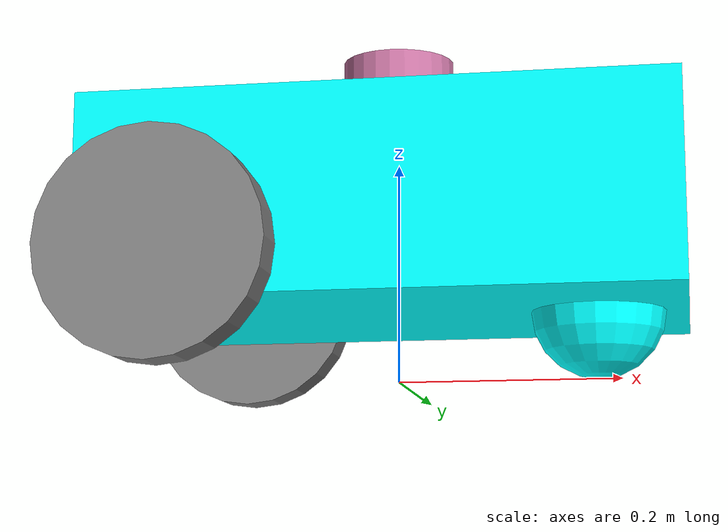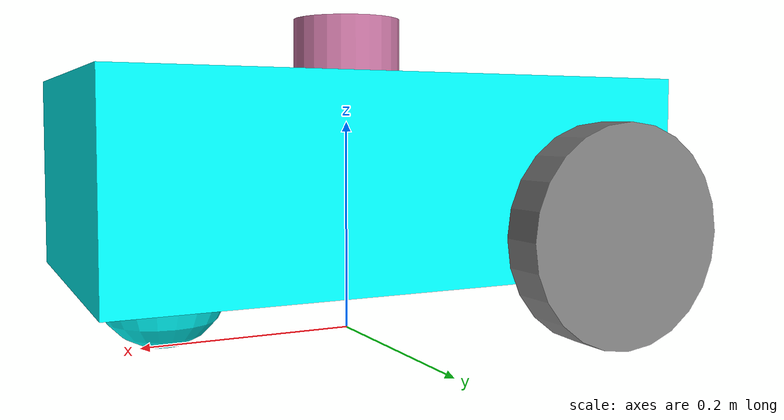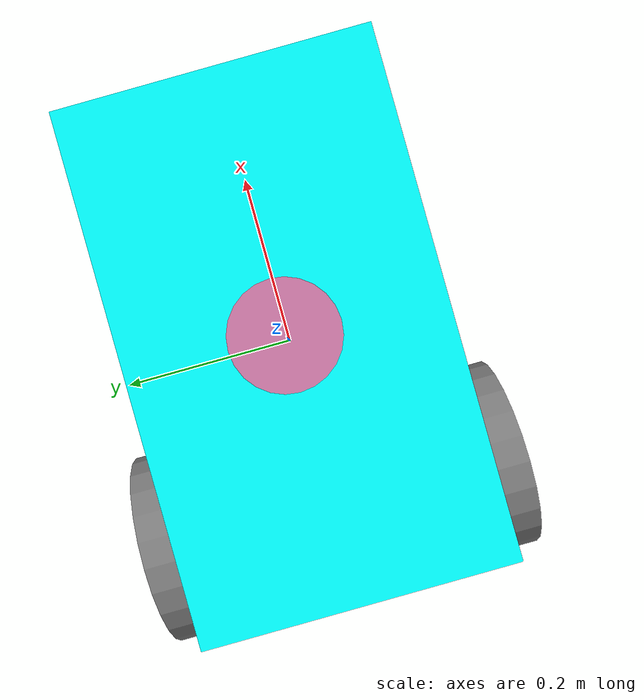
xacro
<?xml version="1.0"?>
<robot name="test_bot" xmlns:xacro="http://ros.org/wiki/xacro">

  <!-- Define robot constants -->
  <xacro:property name="base_width" value="0.31"/>
  <xacro:property name="base_length" value="0.52"/>
  <xacro:property name="base_height" value="0.18"/>

  <xacro:property name="wheel_radius" value="0.10"/>
  <xacro:property name="wheel_width" value="0.04"/>
  <xacro:property name="wheel_zoff" value="0.05"/>
  <xacro:property name="wheel_xoff" value="0.18"/>

  <xacro:property name="caster_radius" value="${wheel_radius+wheel_zoff-(base_height/2)}"/>
  <xacro:property name="caster_xoff" value="0.18"/>

  <!-- Define intertial property macros  -->
  <xacro:macro name="box_inertia" params="m w h d">
    <inertial>
      <origin xyz="0 0 0" rpy="0 0 0"/>
      <mass value="${m}"/>
      <inertia ixx="${(m/12) * (h*h + d*d)}" ixy="0.0" ixz="0.0" iyy="${(m/12) * (w*w + d*d)}" iyz="0.0" izz="${(m/12) * (w*w + h*h)}"/>
    </inertial>
  </xacro:macro>

  <xacro:macro name="cylinder_inertia" params="m r h">
    <inertial>
      <origin xyz="0 0 0" rpy="${pi/2} 0 0"/>
      <mass value="${m}"/>
      <inertia ixx="${(m/12) * (3*r*r + h*h)}" ixy = "0" ixz = "0" iyy="${(m/12) * (3*r*r + h*h)}" iyz = "0" izz="${(m/2) * (r*r)}"/>
    </inertial>
  </xacro:macro>

  <xacro:macro name="sphere_inertia" params="m r">
    <inertial>
      <mass value="${m}"/>
      <inertia ixx="${(2/5) * m * (r*r)}" ixy="0.0" ixz="0.0" iyy="${(2/5) * m * (r*r)}" iyz="0.0" izz="${(2/5) * m * (r*r)}"/>
    </inertial>
  </xacro:macro>

  <!-- Robot Base -->
  <link name="base_link">
    <visual>
      <geometry>
        <box size="${base_length} ${base_width} ${base_height}"/>
      </geometry>
      <material name="Cyan">
        <color rgba="0 1.0 1.0 1.0"/>
      </material>
    </visual>
    <collision>
      <geometry>
        <box size="${base_length} ${base_width} ${base_height}"/>
      </geometry>
    </collision>
    <xacro:box_inertia m="5" w="${base_width}" d="${base_length}" h="${base_height}"/>
  </link>

  <!-- Robot Footprint -->
  <link name="base_footprint"/>

  <joint name="base_joint" type="fixed">
    <parent link="base_footprint"/>
    <child link="base_link"/>
    <origin xyz="0 0 ${(wheel_radius+wheel_zoff)}" rpy="0 0 0"/>
  </joint>

    <!-- Drive Wheels -->
  <xacro:macro name="wheel" params="prefix x_reflect y_reflect">
    <link name="${prefix}_link">
      <visual>
        <origin xyz="0 0 0" rpy="${pi/2} 0 0"/>
        <geometry>
            <cylinder radius="${wheel_radius}" length="${wheel_width}"/>
        </geometry>
        <material name="Gray">
          <color rgba="0.5 0.5 0.5 1.0"/>
        </material>
      </visual>
      <collision>
        <origin xyz="0 0 0" rpy="${pi/2} 0 0"/>
        <geometry>
          <cylinder radius="${wheel_radius}" length="${wheel_width}"/>
        </geometry>
      </collision>
      <xacro:cylinder_inertia m="2" r="${wheel_radius}" h="${wheel_width}"/>
    </link>

    <joint name="${prefix}_joint" type="continuous">
      <parent link="base_link"/>
      <child link="${prefix}_link"/>
      <origin xyz="${x_reflect*wheel_xoff} ${y_reflect*((base_width/2)+(wheel_width/2))} ${-wheel_zoff}" rpy="0 0 0"/>
      <axis xyz="0 1 0"/>
    </joint>
  </xacro:macro>

  <xacro:wheel prefix="drivewhl_l" x_reflect="-1.0" y_reflect="1.0" />
  <xacro:wheel prefix="drivewhl_r" x_reflect="-1.0" y_reflect="-1.0" />

  <!-- Caster Wheel -->
  <link name="front_caster">
    <visual>
      <origin xyz="0 0 0" rpy="0 0 0"/>
      <geometry>
        <sphere radius="${caster_radius}"/>
      </geometry>
      <material name="Cyan">
        <color rgba="0 1.0 1.0 1.0"/>
      </material>
    </visual>

    <collision>
      <origin xyz="0 0 0" rpy="0 0 0"/>
      <geometry>
        <sphere radius="${caster_radius}"/>
      </geometry>
    </collision>

    <xacro:sphere_inertia m="2" r="${caster_radius}"/>
  </link>

  <gazebo reference="front_caster">
    <mu1 value="0"/>
    <mu2 value="0"/>
  </gazebo>

  <joint name="caster_joint" type="fixed">
    <parent link="base_link"/>
    <child link="front_caster"/>
    <origin xyz="${caster_xoff} 0 ${-(base_height/2)}" rpy="0 0 0"/>
  </joint>

  <!-- Imu Plugin Set Up -->
  <link name="imu_link">
    <visual>
      <geometry>
        <box size="0.1 0.1 0.1"/>
      </geometry>
    </visual>

    <collision>
      <geometry>
        <box size="0.1 0.1 0.1"/>
      </geometry>
    </collision>

    <xacro:box_inertia m="0.1" w="0.1" d="0.1" h="0.1"/>
  </link>

  <joint name="imu_joint" type="fixed">
    <parent link="base_link"/>
    <child link="imu_link"/>
    <origin xyz="0 0 0.01"/>
  </joint>

  <gazebo reference="imu_link">
    <sensor name="imu_sensor" type="imu">
    <plugin filename="libgazebo_ros_imu_sensor.so" name="imu_plugin">
        <ros>
          <remapping>~/out:=imu</remapping>
        </ros>
        <initial_orientation_as_reference>false</initial_orientation_as_reference>
      </plugin>
      <always_on>true</always_on>
      <update_rate>100</update_rate>
      <visualize>true</visualize>
      <imu>
        <angular_velocity>
          <x>
            <noise type="gaussian">
              <mean>0.0</mean>
              <stddev>2e-4</stddev>
              <bias_mean>0.0000075</bias_mean>
              <bias_stddev>0.0000008</bias_stddev>
            </noise>
          </x>
          <y>
            <noise type="gaussian">
              <mean>0.0</mean>
              <stddev>2e-4</stddev>
              <bias_mean>0.0000075</bias_mean>
              <bias_stddev>0.0000008</bias_stddev>
            </noise>
          </y>
          <z>
            <noise type="gaussian">
              <mean>0.0</mean>
              <stddev>2e-4</stddev>
              <bias_mean>0.0000075</bias_mean>
              <bias_stddev>0.0000008</bias_stddev>
            </noise>
          </z>
        </angular_velocity>
        <linear_acceleration>
          <x>
            <noise type="gaussian">
              <mean>0.0</mean>
              <stddev>1.7e-2</stddev>
              <bias_mean>0.1</bias_mean>
              <bias_stddev>0.001</bias_stddev>
            </noise>
          </x>
          <y>
            <noise type="gaussian">
              <mean>0.0</mean>
              <stddev>1.7e-2</stddev>
              <bias_mean>0.1</bias_mean>
              <bias_stddev>0.001</bias_stddev>
            </noise>
          </y>
          <z>
            <noise type="gaussian">
              <mean>0.0</mean>
              <stddev>1.7e-2</stddev>
              <bias_mean>0.1</bias_mean>
              <bias_stddev>0.001</bias_stddev>
            </noise>
          </z>
        </linear_acceleration>
      </imu>
    </sensor>
  </gazebo>

  <gazebo>
    <plugin name='diff_drive' filename='libgazebo_ros_diff_drive.so'>

      <update_rate>30</update_rate>

      <!-- wheels -->
      <left_joint>drivewhl_l_joint</left_joint>
      <right_joint>drivewhl_r_joint</right_joint>

      <!-- kinematics -->
      <wheel_separation>0.35</wheel_separation>
      <wheel_diameter>0.2</wheel_diameter>

      <!-- limits -->
      <max_wheel_torque>20</max_wheel_torque>
      <max_wheel_acceleration>1.0</max_wheel_acceleration>

      <!-- input -->
      <!-- subscribe to the /cmd_vel topic-->
      <command_topic>cmd_vel</command_topic>

      <!-- output -->
      <!-- When true, publish wheel odometry information -->
      <publish_odom>true</publish_odom>

      <!-- When true, publish coordinate transform from odom to base_footprint -->
      <!-- The robot localization package will publish this information -->
      <publish_odom_tf>false</publish_odom_tf>

      <!-- When true, publish coordinate transform from base_link to the wheels -->
      <!-- The robot_state_publisher package is often used to publish this transform -->
      <!-- There will be a warning if both the robot state publisher and the differential drive package publishes the wheel transform (one of them will be ignored) -->
      <publish_wheel_tf>true</publish_wheel_tf>

      <odometry_frame>odom</odometry_frame>
      <robot_base_frame>base_footprint</robot_base_frame>
    </plugin>
  </gazebo>

  <link name="lidar_link">
    <inertial>
      <origin xyz="0 0 0" rpy="0 0 0"/>
      <mass value="0.125"/>
      <inertia ixx="0.001"  ixy="0"  ixz="0" iyy="0.001" iyz="0" izz="0.001" />
    </inertial>

    <collision>
      <origin xyz="0 0 0" rpy="0 0 0"/>
      <geometry>
        <cylinder radius="0.0508" length="0.055"/>
      </geometry>
    </collision>

    <visual>
      <origin xyz="0 0 0" rpy="0 0 0"/>
      <geometry>
        <cylinder radius="0.0508" length="0.055"/>
      </geometry>
    </visual>
  </link>

  <joint name="lidar_joint" type="fixed">
    <parent link="base_link"/>
    <child link="lidar_link"/>
    <origin xyz="0 0 0.12" rpy="0 0 0"/>
  </joint>

  <gazebo reference="lidar_link">
    <sensor name="lidar" type="ray">
      <always_on>true</always_on>
      <visualize>true</visualize>
      <update_rate>5</update_rate>
      <ray>
        <scan>
          <horizontal>
            <samples>360</samples>
            <resolution>1.000000</resolution>
            <min_angle>0.000000</min_angle>
            <max_angle>6.280000</max_angle>
          </horizontal>
        </scan>
        <range>
          <min>0.120000</min>
          <max>6.0</max>
          <resolution>0.015000</resolution>
        </range>
        <noise>
          <type>gaussian</type>
          <mean>0.0</mean>
          <stddev>0.01</stddev>
        </noise>
      </ray>
      <plugin name="scan" filename="libgazebo_ros_ray_sensor.so">
        <ros>
          <remapping>~/out:=scan</remapping>
        </ros>
        <output_type>sensor_msgs/LaserScan</output_type>
        <frame_name>lidar_link</frame_name>
      </plugin>
    </sensor>
  </gazebo>
</robot>
